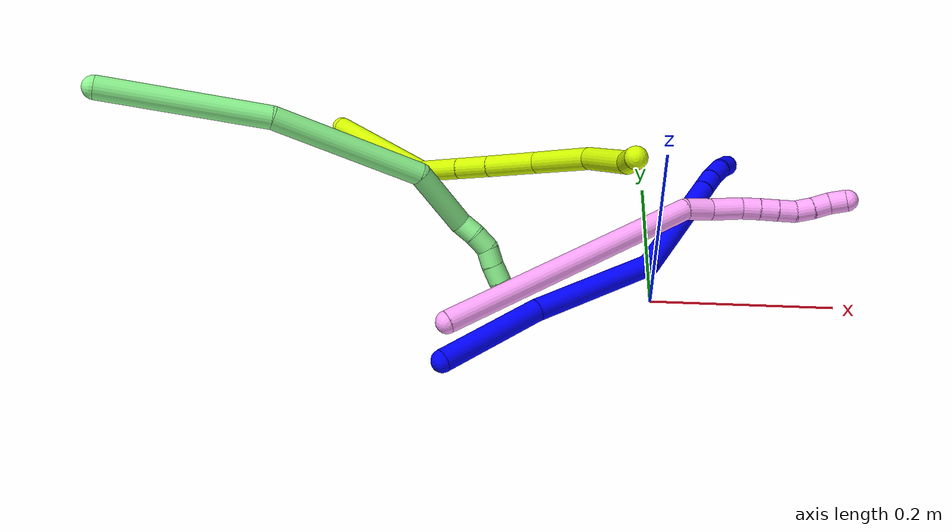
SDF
<sdf version="1.7">
 <world name="default">
  <model name="1">
   <static>0</static>
   <link name="1">
    <collision name="collision-cylinder-e_1_1_4">
     <pose>0.00017 0.049913 -0.037373 -2.21351 0.00273 -0.005455</pose>
     <geometry><cylinder><radius>0.0125</radius><length>0.124709</length></cylinder></geometry>
     <surface>
      <friction><ode><mu>1.16</mu><mu2>1.16</mu2><slip1>0</slip1><slip2>0</slip2></ode></friction>
      <contact><ode><kp>1e+06</kp><kd>1</kd><max_vel>0</max_vel><min_depth>0.001</min_depth></ode></contact>
     </surface>
    </collision>
    <visual name="visual-cylinder-e_1_1_4">
     <pose>0.00017 0.049913 -0.037373 -2.21351 0.00273 -0.005455</pose>
     <geometry><cylinder><radius>0.0125</radius><length>0.124709</length></cylinder></geometry>
     <material><ambient>0 0 1 1</ambient></material>
    </visual>
    <collision name="collision-cylinder-e_2_4_5">
     <pose>-0.004843 0.163602 -0.111821 -2.09738 -0.070147 0.121816</pose>
     <geometry><cylinder><radius>0.0125</radius><length>0.147902</length></cylinder></geometry>
     <surface>
      <friction><ode><mu>1.16</mu><mu2>1.16</mu2><slip1>0</slip1><slip2>0</slip2></ode></friction>
      <contact><ode><kp>1e+06</kp><kd>1</kd><max_vel>0</max_vel><min_depth>0.001</min_depth></ode></contact>
     </surface>
    </collision>
    <visual name="visual-cylinder-e_2_4_5">
     <pose>-0.004843 0.163602 -0.111821 -2.09738 -0.070147 0.121816</pose>
     <geometry><cylinder><radius>0.0125</radius><length>0.147902</length></cylinder></geometry>
     <material><ambient>0 0 1 1</ambient></material>
    </visual>
    <collision name="collision-cylinder-e_3_5_6">
     <pose>-0.002838 0.266967 -0.21059 -2.57107 0.09775 -0.330545</pose>
     <geometry><cylinder><radius>0.0125</radius><length>0.14731</length></cylinder></geometry>
     <surface>
      <friction><ode><mu>1.16</mu><mu2>1.16</mu2><slip1>0</slip1><slip2>0</slip2></ode></friction>
      <contact><ode><kp>1e+06</kp><kd>1</kd><max_vel>0</max_vel><min_depth>0.001</min_depth></ode></contact>
     </surface>
    </collision>
    <visual name="visual-cylinder-e_3_5_6">
     <pose>-0.002838 0.266967 -0.21059 -2.57107 0.09775 -0.330545</pose>
     <geometry><cylinder><radius>0.0125</radius><length>0.14731</length></cylinder></geometry>
     <material><ambient>0 0 1 1</ambient></material>
    </visual>
    <collision name="collision-cylinder-e_4_6_7">
     <pose>0.006806 0.313166 -0.282592 -2.57142 0.197856 -0.653076</pose>
     <geometry><cylinder><radius>0.0125</radius><length>0.024978</length></cylinder></geometry>
     <surface>
      <friction><ode><mu>1.16</mu><mu2>1.16</mu2><slip1>0</slip1><slip2>0</slip2></ode></friction>
      <contact><ode><kp>1e+06</kp><kd>1</kd><max_vel>0</max_vel><min_depth>0.001</min_depth></ode></contact>
     </surface>
    </collision>
    <visual name="visual-cylinder-e_4_6_7">
     <pose>0.006806 0.313166 -0.282592 -2.57142 0.197856 -0.653076</pose>
     <geometry><cylinder><radius>0.0125</radius><length>0.024978</length></cylinder></geometry>
     <material><ambient>0 0 1 1</ambient></material>
    </visual>
    <collision name="collision-cylinder-e_5_7_8">
     <pose>0.012743 0.328298 -0.303603 -2.46911 0.249205 -0.688203</pose>
     <geometry><cylinder><radius>0.0125</radius><length>0.028235</length></cylinder></geometry>
     <surface>
      <friction><ode><mu>1.16</mu><mu2>1.16</mu2><slip1>0</slip1><slip2>0</slip2></ode></friction>
      <contact><ode><kp>1e+06</kp><kd>1</kd><max_vel>0</max_vel><min_depth>0.001</min_depth></ode></contact>
     </surface>
    </collision>
    <visual name="visual-cylinder-e_5_7_8">
     <pose>0.012743 0.328298 -0.303603 -2.46911 0.249205 -0.688203</pose>
     <geometry><cylinder><radius>0.0125</radius><length>0.028235</length></cylinder></geometry>
     <material><ambient>0 0 1 1</ambient></material>
    </visual>
    <collision name="collision-cylinder-e_6_8_2">
     <pose>0.022868 0.345298 -0.322333 -2.32893 0.517346 -1.10268</pose>
     <geometry><cylinder><radius>0.0125</radius><length>0.026865</length></cylinder></geometry>
     <surface>
      <friction><ode><mu>1.16</mu><mu2>1.16</mu2><slip1>0</slip1><slip2>0</slip2></ode></friction>
      <contact><ode><kp>1e+06</kp><kd>1</kd><max_vel>0</max_vel><min_depth>0.001</min_depth></ode></contact>
     </surface>
    </collision>
    <visual name="visual-cylinder-e_6_8_2">
     <pose>0.022868 0.345298 -0.322333 -2.32893 0.517346 -1.10268</pose>
     <geometry><cylinder><radius>0.0125</radius><length>0.026865</length></cylinder></geometry>
     <material><ambient>0 0 1 1</ambient></material>
    </visual>
    <collision name="collision-sphere-2">
     <pose>0.029511 0.353775 -0.33036 0 -0 0</pose>
     <geometry><sphere><radius>0.0125</radius></sphere></geometry>
     <surface>
      <friction><ode><mu>1.16</mu><mu2>1.16</mu2><slip1>0</slip1><slip2>0</slip2></ode></friction>
      <contact><ode><kp>1e+06</kp><kd>1</kd><max_vel>0</max_vel><min_depth>0.001</min_depth></ode></contact>
     </surface>
    </collision>
    <visual name="visual-sphere-2">
     <pose>0.029511 0.353775 -0.33036 0 -0 0</pose>
     <geometry><sphere><radius>0.0125</radius></sphere></geometry>
     <material><ambient>0 0 1 1</ambient></material>
    </visual>
    <collision name="collision-sphere-4">
     <pose>0.00034 0.099826 -0.074746 0 -0 0</pose>
     <geometry><sphere><radius>0.0125</radius></sphere></geometry>
     <surface>
      <friction><ode><mu>1.16</mu><mu2>1.16</mu2><slip1>0</slip1><slip2>0</slip2></ode></friction>
      <contact><ode><kp>1e+06</kp><kd>1</kd><max_vel>0</max_vel><min_depth>0.001</min_depth></ode></contact>
     </surface>
    </collision>
    <visual name="visual-sphere-4">
     <pose>0.00034 0.099826 -0.074746 0 -0 0</pose>
     <geometry><sphere><radius>0.0125</radius></sphere></geometry>
     <material><ambient>0 0 1 1</ambient></material>
    </visual>
    <collision name="collision-sphere-1">
     <geometry><sphere><radius>0.0125</radius></sphere></geometry>
     <surface>
      <friction><ode><mu>1.16</mu><mu2>1.16</mu2><slip1>0</slip1><slip2>0</slip2></ode></friction>
      <contact><ode><kp>1e+06</kp><kd>1</kd><max_vel>0</max_vel><min_depth>0.001</min_depth></ode></contact>
     </surface>
    </collision>
    <visual name="visual-sphere-1">
     <geometry><sphere><radius>0.0125</radius></sphere></geometry>
     <material><ambient>0 0 1 1</ambient></material>
    </visual>
    <collision name="collision-sphere-8">
     <pose>0.016224 0.336821 -0.314306 0 -0 0</pose>
     <geometry><sphere><radius>0.0125</radius></sphere></geometry>
     <surface>
      <friction><ode><mu>1.16</mu><mu2>1.16</mu2><slip1>0</slip1><slip2>0</slip2></ode></friction>
      <contact><ode><kp>1e+06</kp><kd>1</kd><max_vel>0</max_vel><min_depth>0.001</min_depth></ode></contact>
     </surface>
    </collision>
    <visual name="visual-sphere-8">
     <pose>0.016224 0.336821 -0.314306 0 -0 0</pose>
     <geometry><sphere><radius>0.0125</radius></sphere></geometry>
     <material><ambient>0 0 1 1</ambient></material>
    </visual>
    <collision name="collision-sphere-5">
     <pose>-0.010026 0.227378 -0.148896 0 -0 0</pose>
     <geometry><sphere><radius>0.0125</radius></sphere></geometry>
     <surface>
      <friction><ode><mu>1.16</mu><mu2>1.16</mu2><slip1>0</slip1><slip2>0</slip2></ode></friction>
      <contact><ode><kp>1e+06</kp><kd>1</kd><max_vel>0</max_vel><min_depth>0.001</min_depth></ode></contact>
     </surface>
    </collision>
    <visual name="visual-sphere-5">
     <pose>-0.010026 0.227378 -0.148896 0 -0 0</pose>
     <geometry><sphere><radius>0.0125</radius></sphere></geometry>
     <material><ambient>0 0 1 1</ambient></material>
    </visual>
    <collision name="collision-sphere-6">
     <pose>0.004351 0.306556 -0.272283 0 -0 0</pose>
     <geometry><sphere><radius>0.0125</radius></sphere></geometry>
     <surface>
      <friction><ode><mu>1.16</mu><mu2>1.16</mu2><slip1>0</slip1><slip2>0</slip2></ode></friction>
      <contact><ode><kp>1e+06</kp><kd>1</kd><max_vel>0</max_vel><min_depth>0.001</min_depth></ode></contact>
     </surface>
    </collision>
    <visual name="visual-sphere-6">
     <pose>0.004351 0.306556 -0.272283 0 -0 0</pose>
     <geometry><sphere><radius>0.0125</radius></sphere></geometry>
     <material><ambient>0 0 1 1</ambient></material>
    </visual>
    <collision name="collision-sphere-7">
     <pose>0.009261 0.319776 -0.2929 0 -0 0</pose>
     <geometry><sphere><radius>0.0125</radius></sphere></geometry>
     <surface>
      <friction><ode><mu>1.16</mu><mu2>1.16</mu2><slip1>0</slip1><slip2>0</slip2></ode></friction>
      <contact><ode><kp>1e+06</kp><kd>1</kd><max_vel>0</max_vel><min_depth>0.001</min_depth></ode></contact>
     </surface>
    </collision>
    <visual name="visual-sphere-7">
     <pose>0.009261 0.319776 -0.2929 0 -0 0</pose>
     <geometry><sphere><radius>0.0125</radius></sphere></geometry>
     <material><ambient>0 0 1 1</ambient></material>
    </visual>
    <inertial>
     <pose>6.2e-05 0.192234 -0.153024 0 -0 0</pose>
     <mass>0.5</mass>
     <inertia>
      <ixx>0.000642</ixx>
      <ixy>0</ixy>
      <ixz>0</ixz>
      <iyy>-0.000483</iyy>
      <iyz>0</iyz>
      <izz>-0.000558</izz>
     </inertia>
    </inertial>
   </link>
   <pose>-0.219983 -0.113507 0.011872 -2.49761 1.05943 2.27583</pose>
  </model>
  <model name="4">
   <static>0</static>
   <link name="4">
    <collision name="collision-cylinder-e_1_1_4">
     <pose>0.111063 0.107108 0.001743 -1.55452 0.80346 -0.791812</pose>
     <geometry><cylinder><radius>0.0125</radius><length>0.308612</length></cylinder></geometry>
     <surface>
      <friction><ode><mu>1.16</mu><mu2>1.16</mu2><slip1>0</slip1><slip2>0</slip2></ode></friction>
      <contact><ode><kp>1e+06</kp><kd>1</kd><max_vel>0</max_vel><min_depth>0.001</min_depth></ode></contact>
     </surface>
    </collision>
    <visual name="visual-cylinder-e_1_1_4">
     <pose>0.111063 0.107108 0.001743 -1.55452 0.80346 -0.791812</pose>
     <geometry><cylinder><radius>0.0125</radius><length>0.308612</length></cylinder></geometry>
     <material><ambient>1 0.65098 0.996078 1</ambient></material>
    </visual>
    <collision name="collision-cylinder-e_2_4_5">
     <pose>0.229012 0.228474 0.000715 -1.76276 0.442657 -0.532932</pose>
     <geometry><cylinder><radius>0.0125</radius><length>0.032149</length></cylinder></geometry>
     <surface>
      <friction><ode><mu>1.16</mu><mu2>1.16</mu2><slip1>0</slip1><slip2>0</slip2></ode></friction>
      <contact><ode><kp>1e+06</kp><kd>1</kd><max_vel>0</max_vel><min_depth>0.001</min_depth></ode></contact>
     </surface>
    </collision>
    <visual name="visual-cylinder-e_2_4_5">
     <pose>0.229012 0.228474 0.000715 -1.76276 0.442657 -0.532932</pose>
     <geometry><cylinder><radius>0.0125</radius><length>0.032149</length></cylinder></geometry>
     <material><ambient>1 0.65098 0.996078 1</ambient></material>
    </visual>
    <collision name="collision-cylinder-e_3_5_6">
     <pose>0.245263 0.257014 -0.008482 -1.9936 0.538967 -0.807374</pose>
     <geometry><cylinder><radius>0.0125</radius><length>0.036495</length></cylinder></geometry>
     <surface>
      <friction><ode><mu>1.16</mu><mu2>1.16</mu2><slip1>0</slip1><slip2>0</slip2></ode></friction>
      <contact><ode><kp>1e+06</kp><kd>1</kd><max_vel>0</max_vel><min_depth>0.001</min_depth></ode></contact>
     </surface>
    </collision>
    <visual name="visual-cylinder-e_3_5_6">
     <pose>0.245263 0.257014 -0.008482 -1.9936 0.538967 -0.807374</pose>
     <geometry><cylinder><radius>0.0125</radius><length>0.036495</length></cylinder></geometry>
     <material><ambient>1 0.65098 0.996078 1</ambient></material>
    </visual>
    <collision name="collision-cylinder-e_4_6_7">
     <pose>0.259418 0.279076 -0.020057 -2.15552 0.474313 -0.845471</pose>
     <geometry><cylinder><radius>0.0125</radius><length>0.020975</length></cylinder></geometry>
     <surface>
      <friction><ode><mu>1.16</mu><mu2>1.16</mu2><slip1>0</slip1><slip2>0</slip2></ode></friction>
      <contact><ode><kp>1e+06</kp><kd>1</kd><max_vel>0</max_vel><min_depth>0.001</min_depth></ode></contact>
     </surface>
    </collision>
    <visual name="visual-cylinder-e_4_6_7">
     <pose>0.259418 0.279076 -0.020057 -2.15552 0.474313 -0.845471</pose>
     <geometry><cylinder><radius>0.0125</radius><length>0.020975</length></cylinder></geometry>
     <material><ambient>1 0.65098 0.996078 1</ambient></material>
    </visual>
    <collision name="collision-cylinder-e_5_7_8">
     <pose>0.268631 0.294708 -0.030215 -2.13856 0.443314 -0.779964</pose>
     <geometry><cylinder><radius>0.0125</radius><length>0.020621</length></cylinder></geometry>
     <surface>
      <friction><ode><mu>1.16</mu><mu2>1.16</mu2><slip1>0</slip1><slip2>0</slip2></ode></friction>
      <contact><ode><kp>1e+06</kp><kd>1</kd><max_vel>0</max_vel><min_depth>0.001</min_depth></ode></contact>
     </surface>
    </collision>
    <visual name="visual-cylinder-e_5_7_8">
     <pose>0.268631 0.294708 -0.030215 -2.13856 0.443314 -0.779964</pose>
     <geometry><cylinder><radius>0.0125</radius><length>0.020621</length></cylinder></geometry>
     <material><ambient>1 0.65098 0.996078 1</ambient></material>
    </visual>
    <collision name="collision-cylinder-e_6_8_9">
     <pose>0.277583 0.310716 -0.039906 -2.09192 0.448883 -0.751129</pose>
     <geometry><cylinder><radius>0.0125</radius><length>0.020876</length></cylinder></geometry>
     <surface>
      <friction><ode><mu>1.16</mu><mu2>1.16</mu2><slip1>0</slip1><slip2>0</slip2></ode></friction>
      <contact><ode><kp>1e+06</kp><kd>1</kd><max_vel>0</max_vel><min_depth>0.001</min_depth></ode></contact>
     </surface>
    </collision>
    <visual name="visual-cylinder-e_6_8_9">
     <pose>0.277583 0.310716 -0.039906 -2.09192 0.448883 -0.751129</pose>
     <geometry><cylinder><radius>0.0125</radius><length>0.020876</length></cylinder></geometry>
     <material><ambient>1 0.65098 0.996078 1</ambient></material>
    </visual>
    <collision name="collision-cylinder-e_7_9_10">
     <pose>0.288612 0.325356 -0.048646 -2.13004 0.704246 -1.17155</pose>
     <geometry><cylinder><radius>0.0125</radius><length>0.020075</length></cylinder></geometry>
     <surface>
      <friction><ode><mu>1.16</mu><mu2>1.16</mu2><slip1>0</slip1><slip2>0</slip2></ode></friction>
      <contact><ode><kp>1e+06</kp><kd>1</kd><max_vel>0</max_vel><min_depth>0.001</min_depth></ode></contact>
     </surface>
    </collision>
    <visual name="visual-cylinder-e_7_9_10">
     <pose>0.288612 0.325356 -0.048646 -2.13004 0.704246 -1.17155</pose>
     <geometry><cylinder><radius>0.0125</radius><length>0.020075</length></cylinder></geometry>
     <material><ambient>1 0.65098 0.996078 1</ambient></material>
    </visual>
    <collision name="collision-cylinder-e_8_10_11">
     <pose>0.302332 0.337942 -0.056184 -2.08906 0.799245 -1.25729</pose>
     <geometry><cylinder><radius>0.0125</radius><length>0.020148</length></cylinder></geometry>
     <surface>
      <friction><ode><mu>1.16</mu><mu2>1.16</mu2><slip1>0</slip1><slip2>0</slip2></ode></friction>
      <contact><ode><kp>1e+06</kp><kd>1</kd><max_vel>0</max_vel><min_depth>0.001</min_depth></ode></contact>
     </surface>
    </collision>
    <visual name="visual-cylinder-e_8_10_11">
     <pose>0.302332 0.337942 -0.056184 -2.08906 0.799245 -1.25729</pose>
     <geometry><cylinder><radius>0.0125</radius><length>0.020148</length></cylinder></geometry>
     <material><ambient>1 0.65098 0.996078 1</ambient></material>
    </visual>
    <collision name="collision-cylinder-e_9_11_2">
     <pose>0.315934 0.348553 -0.065945 -2.51902 0.68988 -1.68098</pose>
     <geometry><cylinder><radius>0.0125</radius><length>0.020049</length></cylinder></geometry>
     <surface>
      <friction><ode><mu>1.16</mu><mu2>1.16</mu2><slip1>0</slip1><slip2>0</slip2></ode></friction>
      <contact><ode><kp>1e+06</kp><kd>1</kd><max_vel>0</max_vel><min_depth>0.001</min_depth></ode></contact>
     </surface>
    </collision>
    <visual name="visual-cylinder-e_9_11_2">
     <pose>0.315934 0.348553 -0.065945 -2.51902 0.68988 -1.68098</pose>
     <geometry><cylinder><radius>0.0125</radius><length>0.020049</length></cylinder></geometry>
     <material><ambient>1 0.65098 0.996078 1</ambient></material>
    </visual>
    <collision name="collision-sphere-2">
     <pose>0.322314 0.353062 -0.072227 0 -0 0</pose>
     <geometry><sphere><radius>0.0125</radius></sphere></geometry>
     <surface>
      <friction><ode><mu>1.16</mu><mu2>1.16</mu2><slip1>0</slip1><slip2>0</slip2></ode></friction>
      <contact><ode><kp>1e+06</kp><kd>1</kd><max_vel>0</max_vel><min_depth>0.001</min_depth></ode></contact>
     </surface>
    </collision>
    <visual name="visual-sphere-2">
     <pose>0.322314 0.353062 -0.072227 0 -0 0</pose>
     <geometry><sphere><radius>0.0125</radius></sphere></geometry>
     <material><ambient>1 0.65098 0.996078 1</ambient></material>
    </visual>
    <collision name="collision-sphere-11">
     <pose>0.309554 0.344044 -0.059664 0 -0 0</pose>
     <geometry><sphere><radius>0.0125</radius></sphere></geometry>
     <surface>
      <friction><ode><mu>1.16</mu><mu2>1.16</mu2><slip1>0</slip1><slip2>0</slip2></ode></friction>
      <contact><ode><kp>1e+06</kp><kd>1</kd><max_vel>0</max_vel><min_depth>0.001</min_depth></ode></contact>
     </surface>
    </collision>
    <visual name="visual-sphere-11">
     <pose>0.309554 0.344044 -0.059664 0 -0 0</pose>
     <geometry><sphere><radius>0.0125</radius></sphere></geometry>
     <material><ambient>1 0.65098 0.996078 1</ambient></material>
    </visual>
    <collision name="collision-sphere-10">
     <pose>0.295111 0.331841 -0.052705 0 -0 0</pose>
     <geometry><sphere><radius>0.0125</radius></sphere></geometry>
     <surface>
      <friction><ode><mu>1.16</mu><mu2>1.16</mu2><slip1>0</slip1><slip2>0</slip2></ode></friction>
      <contact><ode><kp>1e+06</kp><kd>1</kd><max_vel>0</max_vel><min_depth>0.001</min_depth></ode></contact>
     </surface>
    </collision>
    <visual name="visual-sphere-10">
     <pose>0.295111 0.331841 -0.052705 0 -0 0</pose>
     <geometry><sphere><radius>0.0125</radius></sphere></geometry>
     <material><ambient>1 0.65098 0.996078 1</ambient></material>
    </visual>
    <collision name="collision-sphere-9">
     <pose>0.282113 0.318872 -0.044588 0 -0 0</pose>
     <geometry><sphere><radius>0.0125</radius></sphere></geometry>
     <surface>
      <friction><ode><mu>1.16</mu><mu2>1.16</mu2><slip1>0</slip1><slip2>0</slip2></ode></friction>
      <contact><ode><kp>1e+06</kp><kd>1</kd><max_vel>0</max_vel><min_depth>0.001</min_depth></ode></contact>
     </surface>
    </collision>
    <visual name="visual-sphere-9">
     <pose>0.282113 0.318872 -0.044588 0 -0 0</pose>
     <geometry><sphere><radius>0.0125</radius></sphere></geometry>
     <material><ambient>1 0.65098 0.996078 1</ambient></material>
    </visual>
    <collision name="collision-sphere-4">
     <pose>0.222127 0.214216 0.003486 0 -0 0</pose>
     <geometry><sphere><radius>0.0125</radius></sphere></geometry>
     <surface>
      <friction><ode><mu>1.16</mu><mu2>1.16</mu2><slip1>0</slip1><slip2>0</slip2></ode></friction>
      <contact><ode><kp>1e+06</kp><kd>1</kd><max_vel>0</max_vel><min_depth>0.001</min_depth></ode></contact>
     </surface>
    </collision>
    <visual name="visual-sphere-4">
     <pose>0.222127 0.214216 0.003486 0 -0 0</pose>
     <geometry><sphere><radius>0.0125</radius></sphere></geometry>
     <material><ambient>1 0.65098 0.996078 1</ambient></material>
    </visual>
    <collision name="collision-sphere-1">
     <geometry><sphere><radius>0.0125</radius></sphere></geometry>
     <surface>
      <friction><ode><mu>1.16</mu><mu2>1.16</mu2><slip1>0</slip1><slip2>0</slip2></ode></friction>
      <contact><ode><kp>1e+06</kp><kd>1</kd><max_vel>0</max_vel><min_depth>0.001</min_depth></ode></contact>
     </surface>
    </collision>
    <visual name="visual-sphere-1">
     <geometry><sphere><radius>0.0125</radius></sphere></geometry>
     <material><ambient>1 0.65098 0.996078 1</ambient></material>
    </visual>
    <collision name="collision-sphere-8">
     <pose>0.273053 0.30256 -0.035224 0 -0 0</pose>
     <geometry><sphere><radius>0.0125</radius></sphere></geometry>
     <surface>
      <friction><ode><mu>1.16</mu><mu2>1.16</mu2><slip1>0</slip1><slip2>0</slip2></ode></friction>
      <contact><ode><kp>1e+06</kp><kd>1</kd><max_vel>0</max_vel><min_depth>0.001</min_depth></ode></contact>
     </surface>
    </collision>
    <visual name="visual-sphere-8">
     <pose>0.273053 0.30256 -0.035224 0 -0 0</pose>
     <geometry><sphere><radius>0.0125</radius></sphere></geometry>
     <material><ambient>1 0.65098 0.996078 1</ambient></material>
    </visual>
    <collision name="collision-sphere-5">
     <pose>0.235898 0.242733 -0.002056 0 -0 0</pose>
     <geometry><sphere><radius>0.0125</radius></sphere></geometry>
     <surface>
      <friction><ode><mu>1.16</mu><mu2>1.16</mu2><slip1>0</slip1><slip2>0</slip2></ode></friction>
      <contact><ode><kp>1e+06</kp><kd>1</kd><max_vel>0</max_vel><min_depth>0.001</min_depth></ode></contact>
     </surface>
    </collision>
    <visual name="visual-sphere-5">
     <pose>0.235898 0.242733 -0.002056 0 -0 0</pose>
     <geometry><sphere><radius>0.0125</radius></sphere></geometry>
     <material><ambient>1 0.65098 0.996078 1</ambient></material>
    </visual>
    <collision name="collision-sphere-6">
     <pose>0.254629 0.271296 -0.014908 0 -0 0</pose>
     <geometry><sphere><radius>0.0125</radius></sphere></geometry>
     <surface>
      <friction><ode><mu>1.16</mu><mu2>1.16</mu2><slip1>0</slip1><slip2>0</slip2></ode></friction>
      <contact><ode><kp>1e+06</kp><kd>1</kd><max_vel>0</max_vel><min_depth>0.001</min_depth></ode></contact>
     </surface>
    </collision>
    <visual name="visual-sphere-6">
     <pose>0.254629 0.271296 -0.014908 0 -0 0</pose>
     <geometry><sphere><radius>0.0125</radius></sphere></geometry>
     <material><ambient>1 0.65098 0.996078 1</ambient></material>
    </visual>
    <collision name="collision-sphere-7">
     <pose>0.264208 0.286855 -0.025207 0 -0 0</pose>
     <geometry><sphere><radius>0.0125</radius></sphere></geometry>
     <surface>
      <friction><ode><mu>1.16</mu><mu2>1.16</mu2><slip1>0</slip1><slip2>0</slip2></ode></friction>
      <contact><ode><kp>1e+06</kp><kd>1</kd><max_vel>0</max_vel><min_depth>0.001</min_depth></ode></contact>
     </surface>
    </collision>
    <visual name="visual-sphere-7">
     <pose>0.264208 0.286855 -0.025207 0 -0 0</pose>
     <geometry><sphere><radius>0.0125</radius></sphere></geometry>
     <material><ambient>1 0.65098 0.996078 1</ambient></material>
    </visual>
    <inertial>
     <pose>0.171168 0.177052 -0.010112 0 -0 0</pose>
     <mass>0.5</mass>
     <inertia><ixx>8e-06</ixx><ixy>0</ixy><ixz>0</ixz><iyy>9.1e-05</iyy><iyz>0</iyz><izz>-0.003509</izz></inertia>
    </inertial>
   </link>
   <pose>-0.216909 -0.085592 0.040597 -1.90674 -0.817663 0.813494</pose>
  </model>
  <model name="13">
   <static>0</static>
   <link name="13">
    <collision name="collision-cylinder-e_1_1_4">
     <pose>-0.010691 0.003335 0.086522 -0.038524 -0.122851 0.00237</pose>
     <geometry><cylinder><radius>0.0125</radius><length>0.174488</length></cylinder></geometry>
     <surface>
      <friction><ode><mu>1.16</mu><mu2>1.16</mu2><slip1>0</slip1><slip2>0</slip2></ode></friction>
      <contact><ode><kp>1e+06</kp><kd>1</kd><max_vel>0</max_vel><min_depth>0.001</min_depth></ode></contact>
     </surface>
    </collision>
    <visual name="visual-cylinder-e_1_1_4">
     <pose>-0.010691 0.003335 0.086522 -0.038524 -0.122851 0.00237</pose>
     <geometry><cylinder><radius>0.0125</radius><length>0.174488</length></cylinder></geometry>
     <material><ambient>0.564706 0.984314 0.572549 1</ambient></material>
    </visual>
    <collision name="collision-cylinder-e_2_4_5">
     <pose>-0.046913 -0.002111 0.251622 0.111287 -0.312335 -0.01754</pose>
     <geometry><cylinder><radius>0.0125</radius><length>0.166173</length></cylinder></geometry>
     <surface>
      <friction><ode><mu>1.16</mu><mu2>1.16</mu2><slip1>0</slip1><slip2>0</slip2></ode></friction>
      <contact><ode><kp>1e+06</kp><kd>1</kd><max_vel>0</max_vel><min_depth>0.001</min_depth></ode></contact>
     </surface>
    </collision>
    <visual name="visual-cylinder-e_2_4_5">
     <pose>-0.046913 -0.002111 0.251622 0.111287 -0.312335 -0.01754</pose>
     <geometry><cylinder><radius>0.0125</radius><length>0.166173</length></cylinder></geometry>
     <material><ambient>0.564706 0.984314 0.572549 1</ambient></material>
    </visual>
    <collision name="collision-cylinder-e_3_5_6">
     <pose>-0.097921 -0.024713 0.355923 0.493042 -0.717396 -0.188131</pose>
     <geometry><cylinder><radius>0.0125</radius><length>0.077507</length></cylinder></geometry>
     <surface>
      <friction><ode><mu>1.16</mu><mu2>1.16</mu2><slip1>0</slip1><slip2>0</slip2></ode></friction>
      <contact><ode><kp>1e+06</kp><kd>1</kd><max_vel>0</max_vel><min_depth>0.001</min_depth></ode></contact>
     </surface>
    </collision>
    <visual name="visual-cylinder-e_3_5_6">
     <pose>-0.097921 -0.024713 0.355923 0.493042 -0.717396 -0.188131</pose>
     <geometry><cylinder><radius>0.0125</radius><length>0.077507</length></cylinder></geometry>
     <material><ambient>0.564706 0.984314 0.572549 1</ambient></material>
    </visual>
    <collision name="collision-cylinder-e_4_6_7">
     <pose>-0.129579 -0.037073 0.389544 -0.182944 -0.655822 0.06239</pose>
     <geometry><cylinder><radius>0.0125</radius><length>0.020269</length></cylinder></geometry>
     <surface>
      <friction><ode><mu>1.16</mu><mu2>1.16</mu2><slip1>0</slip1><slip2>0</slip2></ode></friction>
      <contact><ode><kp>1e+06</kp><kd>1</kd><max_vel>0</max_vel><min_depth>0.001</min_depth></ode></contact>
     </surface>
    </collision>
    <visual name="visual-cylinder-e_4_6_7">
     <pose>-0.129579 -0.037073 0.389544 -0.182944 -0.655822 0.06239</pose>
     <geometry><cylinder><radius>0.0125</radius><length>0.020269</length></cylinder></geometry>
     <material><ambient>0.564706 0.984314 0.572549 1</ambient></material>
    </visual>
    <collision name="collision-cylinder-e_5_7_8">
     <pose>-0.143201 -0.036064 0.405102 0.058906 -0.77009 -0.023879</pose>
     <geometry><cylinder><radius>0.0125</radius><length>0.021378</length></cylinder></geometry>
     <surface>
      <friction><ode><mu>1.16</mu><mu2>1.16</mu2><slip1>0</slip1><slip2>0</slip2></ode></friction>
      <contact><ode><kp>1e+06</kp><kd>1</kd><max_vel>0</max_vel><min_depth>0.001</min_depth></ode></contact>
     </surface>
    </collision>
    <visual name="visual-cylinder-e_5_7_8">
     <pose>-0.143201 -0.036064 0.405102 0.058906 -0.77009 -0.023879</pose>
     <geometry><cylinder><radius>0.0125</radius><length>0.021378</length></cylinder></geometry>
     <material><ambient>0.564706 0.984314 0.572549 1</ambient></material>
    </visual>
    <collision name="collision-cylinder-e_6_8_9">
     <pose>-0.160044 -0.036996 0.416201 0.138757 -1.21698 -0.096748</pose>
     <geometry><cylinder><radius>0.0125</radius><length>0.020044</length></cylinder></geometry>
     <surface>
      <friction><ode><mu>1.16</mu><mu2>1.16</mu2><slip1>0</slip1><slip2>0</slip2></ode></friction>
      <contact><ode><kp>1e+06</kp><kd>1</kd><max_vel>0</max_vel><min_depth>0.001</min_depth></ode></contact>
     </surface>
    </collision>
    <visual name="visual-cylinder-e_6_8_9">
     <pose>-0.160044 -0.036996 0.416201 0.138757 -1.21698 -0.096748</pose>
     <geometry><cylinder><radius>0.0125</radius><length>0.020044</length></cylinder></geometry>
     <material><ambient>0.564706 0.984314 0.572549 1</ambient></material>
    </visual>
    <collision name="collision-cylinder-e_7_9_2">
     <pose>-0.178418 -0.037623 0.42421 0.032194 -1.09948 -0.019728</pose>
     <geometry><cylinder><radius>0.0125</radius><length>0.020142</length></cylinder></geometry>
     <surface>
      <friction><ode><mu>1.16</mu><mu2>1.16</mu2><slip1>0</slip1><slip2>0</slip2></ode></friction>
      <contact><ode><kp>1e+06</kp><kd>1</kd><max_vel>0</max_vel><min_depth>0.001</min_depth></ode></contact>
     </surface>
    </collision>
    <visual name="visual-cylinder-e_7_9_2">
     <pose>-0.178418 -0.037623 0.42421 0.032194 -1.09948 -0.019728</pose>
     <geometry><cylinder><radius>0.0125</radius><length>0.020142</length></cylinder></geometry>
     <material><ambient>0.564706 0.984314 0.572549 1</ambient></material>
    </visual>
    <collision name="collision-sphere-2">
     <pose>-0.18739 -0.037771 0.428781 0 -0 0</pose>
     <geometry><sphere><radius>0.0125</radius></sphere></geometry>
     <surface>
      <friction><ode><mu>1.16</mu><mu2>1.16</mu2><slip1>0</slip1><slip2>0</slip2></ode></friction>
      <contact><ode><kp>1e+06</kp><kd>1</kd><max_vel>0</max_vel><min_depth>0.001</min_depth></ode></contact>
     </surface>
    </collision>
    <visual name="visual-sphere-2">
     <pose>-0.18739 -0.037771 0.428781 0 -0 0</pose>
     <geometry><sphere><radius>0.0125</radius></sphere></geometry>
     <material><ambient>0.564706 0.984314 0.572549 1</ambient></material>
    </visual>
    <collision name="collision-sphere-9">
     <pose>-0.169445 -0.037476 0.41964 0 -0 0</pose>
     <geometry><sphere><radius>0.0125</radius></sphere></geometry>
     <surface>
      <friction><ode><mu>1.16</mu><mu2>1.16</mu2><slip1>0</slip1><slip2>0</slip2></ode></friction>
      <contact><ode><kp>1e+06</kp><kd>1</kd><max_vel>0</max_vel><min_depth>0.001</min_depth></ode></contact>
     </surface>
    </collision>
    <visual name="visual-sphere-9">
     <pose>-0.169445 -0.037476 0.41964 0 -0 0</pose>
     <geometry><sphere><radius>0.0125</radius></sphere></geometry>
     <material><ambient>0.564706 0.984314 0.572549 1</ambient></material>
    </visual>
    <collision name="collision-sphere-4">
     <pose>-0.021382 0.00667 0.173044 0 -0 0</pose>
     <geometry><sphere><radius>0.0125</radius></sphere></geometry>
     <surface>
      <friction><ode><mu>1.16</mu><mu2>1.16</mu2><slip1>0</slip1><slip2>0</slip2></ode></friction>
      <contact><ode><kp>1e+06</kp><kd>1</kd><max_vel>0</max_vel><min_depth>0.001</min_depth></ode></contact>
     </surface>
    </collision>
    <visual name="visual-sphere-4">
     <pose>-0.021382 0.00667 0.173044 0 -0 0</pose>
     <geometry><sphere><radius>0.0125</radius></sphere></geometry>
     <material><ambient>0.564706 0.984314 0.572549 1</ambient></material>
    </visual>
    <collision name="collision-sphere-1">
     <geometry><sphere><radius>0.0125</radius></sphere></geometry>
     <surface>
      <friction><ode><mu>1.16</mu><mu2>1.16</mu2><slip1>0</slip1><slip2>0</slip2></ode></friction>
      <contact><ode><kp>1e+06</kp><kd>1</kd><max_vel>0</max_vel><min_depth>0.001</min_depth></ode></contact>
     </surface>
    </collision>
    <visual name="visual-sphere-1">
     <geometry><sphere><radius>0.0125</radius></sphere></geometry>
     <material><ambient>0.564706 0.984314 0.572549 1</ambient></material>
    </visual>
    <collision name="collision-sphere-8">
     <pose>-0.150643 -0.036516 0.412762 0 -0 0</pose>
     <geometry><sphere><radius>0.0125</radius></sphere></geometry>
     <surface>
      <friction><ode><mu>1.16</mu><mu2>1.16</mu2><slip1>0</slip1><slip2>0</slip2></ode></friction>
      <contact><ode><kp>1e+06</kp><kd>1</kd><max_vel>0</max_vel><min_depth>0.001</min_depth></ode></contact>
     </surface>
    </collision>
    <visual name="visual-sphere-8">
     <pose>-0.150643 -0.036516 0.412762 0 -0 0</pose>
     <geometry><sphere><radius>0.0125</radius></sphere></geometry>
     <material><ambient>0.564706 0.984314 0.572549 1</ambient></material>
    </visual>
    <collision name="collision-sphere-5">
     <pose>-0.072444 -0.010892 0.330199 0 -0 0</pose>
     <geometry><sphere><radius>0.0125</radius></sphere></geometry>
     <surface>
      <friction><ode><mu>1.16</mu><mu2>1.16</mu2><slip1>0</slip1><slip2>0</slip2></ode></friction>
      <contact><ode><kp>1e+06</kp><kd>1</kd><max_vel>0</max_vel><min_depth>0.001</min_depth></ode></contact>
     </surface>
    </collision>
    <visual name="visual-sphere-5">
     <pose>-0.072444 -0.010892 0.330199 0 -0 0</pose>
     <geometry><sphere><radius>0.0125</radius></sphere></geometry>
     <material><ambient>0.564706 0.984314 0.572549 1</ambient></material>
    </visual>
    <collision name="collision-sphere-6">
     <pose>-0.123399 -0.038535 0.381646 0 -0 0</pose>
     <geometry><sphere><radius>0.0125</radius></sphere></geometry>
     <surface>
      <friction><ode><mu>1.16</mu><mu2>1.16</mu2><slip1>0</slip1><slip2>0</slip2></ode></friction>
      <contact><ode><kp>1e+06</kp><kd>1</kd><max_vel>0</max_vel><min_depth>0.001</min_depth></ode></contact>
     </surface>
    </collision>
    <visual name="visual-sphere-6">
     <pose>-0.123399 -0.038535 0.381646 0 -0 0</pose>
     <geometry><sphere><radius>0.0125</radius></sphere></geometry>
     <material><ambient>0.564706 0.984314 0.572549 1</ambient></material>
    </visual>
    <collision name="collision-sphere-7">
     <pose>-0.135759 -0.035612 0.397442 0 -0 0</pose>
     <geometry><sphere><radius>0.0125</radius></sphere></geometry>
     <surface>
      <friction><ode><mu>1.16</mu><mu2>1.16</mu2><slip1>0</slip1><slip2>0</slip2></ode></friction>
      <contact><ode><kp>1e+06</kp><kd>1</kd><max_vel>0</max_vel><min_depth>0.001</min_depth></ode></contact>
     </surface>
    </collision>
    <visual name="visual-sphere-7">
     <pose>-0.135759 -0.035612 0.397442 0 -0 0</pose>
     <geometry><sphere><radius>0.0125</radius></sphere></geometry>
     <material><ambient>0.564706 0.984314 0.572549 1</ambient></material>
    </visual>
    <inertial>
     <pose>-0.05948 -0.009412 0.235877 0 -0 0</pose>
     <mass>0.5</mass>
     <inertia>
      <ixx>0.000825</ixx>
      <ixy>0</ixy>
      <ixz>0</ixz>
      <iyy>0.000866</iyy>
      <iyz>0</iyz>
      <izz>0.000279</izz>
     </inertia>
    </inertial>
   </link>
   <pose>-0.568407 0.005089 0.256299 1.85509 -0.895996 1.57191</pose>
  </model>
  <model name="15">
   <static>0</static>
   <link name="15">
    <collision name="collision-cylinder-e_1_1_4">
     <pose>0.045987 -0.048429 0.038122 0.903921 0.641025 0.319567</pose>
     <geometry><cylinder><radius>0.0125</radius><length>0.153797</length></cylinder></geometry>
     <surface>
      <friction><ode><mu>1.16</mu><mu2>1.16</mu2><slip1>0</slip1><slip2>0</slip2></ode></friction>
      <contact><ode><kp>1e+06</kp><kd>1</kd><max_vel>0</max_vel><min_depth>0.001</min_depth></ode></contact>
     </surface>
    </collision>
    <visual name="visual-cylinder-e_1_1_4">
     <pose>0.045987 -0.048429 0.038122 0.903921 0.641025 0.319567</pose>
     <geometry><cylinder><radius>0.0125</radius><length>0.153797</length></cylinder></geometry>
     <material><ambient>0.835294 1 0 1</ambient></material>
    </visual>
    <collision name="collision-cylinder-e_2_4_5">
     <pose>0.115582 -0.104379 0.08598 0.657777 1.09038 0.408218</pose>
     <geometry><cylinder><radius>0.0125</radius><length>0.053245</length></cylinder></geometry>
     <surface>
      <friction><ode><mu>1.16</mu><mu2>1.16</mu2><slip1>0</slip1><slip2>0</slip2></ode></friction>
      <contact><ode><kp>1e+06</kp><kd>1</kd><max_vel>0</max_vel><min_depth>0.001</min_depth></ode></contact>
     </surface>
    </collision>
    <visual name="visual-cylinder-e_2_4_5">
     <pose>0.115582 -0.104379 0.08598 0.657777 1.09038 0.408218</pose>
     <geometry><cylinder><radius>0.0125</radius><length>0.053245</length></cylinder></geometry>
     <material><ambient>0.835294 1 0 1</ambient></material>
    </visual>
    <collision name="collision-cylinder-e_3_5_6">
     <pose>0.157872 -0.117868 0.103435 0.658187 1.0895 0.40809</pose>
     <geometry><cylinder><radius>0.0125</radius><length>0.04215</length></cylinder></geometry>
     <surface>
      <friction><ode><mu>1.16</mu><mu2>1.16</mu2><slip1>0</slip1><slip2>0</slip2></ode></friction>
      <contact><ode><kp>1e+06</kp><kd>1</kd><max_vel>0</max_vel><min_depth>0.001</min_depth></ode></contact>
     </surface>
    </collision>
    <visual name="visual-cylinder-e_3_5_6">
     <pose>0.157872 -0.117868 0.103435 0.658187 1.0895 0.40809</pose>
     <geometry><cylinder><radius>0.0125</radius><length>0.04215</length></cylinder></geometry>
     <material><ambient>0.835294 1 0 1</ambient></material>
    </visual>
    <collision name="collision-cylinder-e_4_6_7">
     <pose>0.204781 -0.132651 0.122965 0.641113 1.08961 0.397079</pose>
     <geometry><cylinder><radius>0.0125</radius><length>0.063688</length></cylinder></geometry>
     <surface>
      <friction><ode><mu>1.16</mu><mu2>1.16</mu2><slip1>0</slip1><slip2>0</slip2></ode></friction>
      <contact><ode><kp>1e+06</kp><kd>1</kd><max_vel>0</max_vel><min_depth>0.001</min_depth></ode></contact>
     </surface>
    </collision>
    <visual name="visual-cylinder-e_4_6_7">
     <pose>0.204781 -0.132651 0.122965 0.641113 1.08961 0.397079</pose>
     <geometry><cylinder><radius>0.0125</radius><length>0.063688</length></cylinder></geometry>
     <material><ambient>0.835294 1 0 1</ambient></material>
    </visual>
    <collision name="collision-cylinder-e_5_7_8">
     <pose>0.263358 -0.150671 0.158035 0.376852 0.881465 0.179403</pose>
     <geometry><cylinder><radius>0.0125</radius><length>0.078657</length></cylinder></geometry>
     <surface>
      <friction><ode><mu>1.16</mu><mu2>1.16</mu2><slip1>0</slip1><slip2>0</slip2></ode></friction>
      <contact><ode><kp>1e+06</kp><kd>1</kd><max_vel>0</max_vel><min_depth>0.001</min_depth></ode></contact>
     </surface>
    </collision>
    <visual name="visual-cylinder-e_5_7_8">
     <pose>0.263358 -0.150671 0.158035 0.376852 0.881465 0.179403</pose>
     <geometry><cylinder><radius>0.0125</radius><length>0.078657</length></cylinder></geometry>
     <material><ambient>0.835294 1 0 1</ambient></material>
    </visual>
    <collision name="collision-cylinder-e_6_8_9">
     <pose>0.313357 -0.169182 0.212248 0.292052 0.546234 0.082349</pose>
     <geometry><cylinder><radius>0.0125</radius><length>0.075655</length></cylinder></geometry>
     <surface>
      <friction><ode><mu>1.16</mu><mu2>1.16</mu2><slip1>0</slip1><slip2>0</slip2></ode></friction>
      <contact><ode><kp>1e+06</kp><kd>1</kd><max_vel>0</max_vel><min_depth>0.001</min_depth></ode></contact>
     </surface>
    </collision>
    <visual name="visual-cylinder-e_6_8_9">
     <pose>0.313357 -0.169182 0.212248 0.292052 0.546234 0.082349</pose>
     <geometry><cylinder><radius>0.0125</radius><length>0.075655</length></cylinder></geometry>
     <material><ambient>0.835294 1 0 1</ambient></material>
    </visual>
    <collision name="collision-cylinder-e_7_9_2">
     <pose>0.338287 -0.177489 0.258701 -0.064378 0.327698 -0.010647</pose>
     <geometry><cylinder><radius>0.0125</radius><length>0.032808</length></cylinder></geometry>
     <surface>
      <friction><ode><mu>1.16</mu><mu2>1.16</mu2><slip1>0</slip1><slip2>0</slip2></ode></friction>
      <contact><ode><kp>1e+06</kp><kd>1</kd><max_vel>0</max_vel><min_depth>0.001</min_depth></ode></contact>
     </surface>
    </collision>
    <visual name="visual-cylinder-e_7_9_2">
     <pose>0.338287 -0.177489 0.258701 -0.064378 0.327698 -0.010647</pose>
     <geometry><cylinder><radius>0.0125</radius><length>0.032808</length></cylinder></geometry>
     <material><ambient>0.835294 1 0 1</ambient></material>
    </visual>
    <collision name="collision-sphere-2">
     <pose>0.343567 -0.17649 0.2742 0 -0 0</pose>
     <geometry><sphere><radius>0.0125</radius></sphere></geometry>
     <surface>
      <friction><ode><mu>1.16</mu><mu2>1.16</mu2><slip1>0</slip1><slip2>0</slip2></ode></friction>
      <contact><ode><kp>1e+06</kp><kd>1</kd><max_vel>0</max_vel><min_depth>0.001</min_depth></ode></contact>
     </surface>
    </collision>
    <visual name="visual-sphere-2">
     <pose>0.343567 -0.17649 0.2742 0 -0 0</pose>
     <geometry><sphere><radius>0.0125</radius></sphere></geometry>
     <material><ambient>0.835294 1 0 1</ambient></material>
    </visual>
    <collision name="collision-sphere-9">
     <pose>0.333007 -0.178488 0.243203 0 -0 0</pose>
     <geometry><sphere><radius>0.0125</radius></sphere></geometry>
     <surface>
      <friction><ode><mu>1.16</mu><mu2>1.16</mu2><slip1>0</slip1><slip2>0</slip2></ode></friction>
      <contact><ode><kp>1e+06</kp><kd>1</kd><max_vel>0</max_vel><min_depth>0.001</min_depth></ode></contact>
     </surface>
    </collision>
    <visual name="visual-sphere-9">
     <pose>0.333007 -0.178488 0.243203 0 -0 0</pose>
     <geometry><sphere><radius>0.0125</radius></sphere></geometry>
     <material><ambient>0.835294 1 0 1</ambient></material>
    </visual>
    <collision name="collision-sphere-4">
     <pose>0.091973 -0.096857 0.076244 0 -0 0</pose>
     <geometry><sphere><radius>0.0125</radius></sphere></geometry>
     <surface>
      <friction><ode><mu>1.16</mu><mu2>1.16</mu2><slip1>0</slip1><slip2>0</slip2></ode></friction>
      <contact><ode><kp>1e+06</kp><kd>1</kd><max_vel>0</max_vel><min_depth>0.001</min_depth></ode></contact>
     </surface>
    </collision>
    <visual name="visual-sphere-4">
     <pose>0.091973 -0.096857 0.076244 0 -0 0</pose>
     <geometry><sphere><radius>0.0125</radius></sphere></geometry>
     <material><ambient>0.835294 1 0 1</ambient></material>
    </visual>
    <collision name="collision-sphere-1">
     <geometry><sphere><radius>0.0125</radius></sphere></geometry>
     <surface>
      <friction><ode><mu>1.16</mu><mu2>1.16</mu2><slip1>0</slip1><slip2>0</slip2></ode></friction>
      <contact><ode><kp>1e+06</kp><kd>1</kd><max_vel>0</max_vel><min_depth>0.001</min_depth></ode></contact>
     </surface>
    </collision>
    <visual name="visual-sphere-1">
     <geometry><sphere><radius>0.0125</radius></sphere></geometry>
     <material><ambient>0.835294 1 0 1</ambient></material>
    </visual>
    <collision name="collision-sphere-8">
     <pose>0.293706 -0.159876 0.181294 0 -0 0</pose>
     <geometry><sphere><radius>0.0125</radius></sphere></geometry>
     <surface>
      <friction><ode><mu>1.16</mu><mu2>1.16</mu2><slip1>0</slip1><slip2>0</slip2></ode></friction>
      <contact><ode><kp>1e+06</kp><kd>1</kd><max_vel>0</max_vel><min_depth>0.001</min_depth></ode></contact>
     </surface>
    </collision>
    <visual name="visual-sphere-8">
     <pose>0.293706 -0.159876 0.181294 0 -0 0</pose>
     <geometry><sphere><radius>0.0125</radius></sphere></geometry>
     <material><ambient>0.835294 1 0 1</ambient></material>
    </visual>
    <collision name="collision-sphere-5">
     <pose>0.139191 -0.111901 0.095717 0 -0 0</pose>
     <geometry><sphere><radius>0.0125</radius></sphere></geometry>
     <surface>
      <friction><ode><mu>1.16</mu><mu2>1.16</mu2><slip1>0</slip1><slip2>0</slip2></ode></friction>
      <contact><ode><kp>1e+06</kp><kd>1</kd><max_vel>0</max_vel><min_depth>0.001</min_depth></ode></contact>
     </surface>
    </collision>
    <visual name="visual-sphere-5">
     <pose>0.139191 -0.111901 0.095717 0 -0 0</pose>
     <geometry><sphere><radius>0.0125</radius></sphere></geometry>
     <material><ambient>0.835294 1 0 1</ambient></material>
    </visual>
    <collision name="collision-sphere-6">
     <pose>0.176553 -0.123836 0.111153 0 -0 0</pose>
     <geometry><sphere><radius>0.0125</radius></sphere></geometry>
     <surface>
      <friction><ode><mu>1.16</mu><mu2>1.16</mu2><slip1>0</slip1><slip2>0</slip2></ode></friction>
      <contact><ode><kp>1e+06</kp><kd>1</kd><max_vel>0</max_vel><min_depth>0.001</min_depth></ode></contact>
     </surface>
    </collision>
    <visual name="visual-sphere-6">
     <pose>0.176553 -0.123836 0.111153 0 -0 0</pose>
     <geometry><sphere><radius>0.0125</radius></sphere></geometry>
     <material><ambient>0.835294 1 0 1</ambient></material>
    </visual>
    <collision name="collision-sphere-7">
     <pose>0.233009 -0.141466 0.134777 0 -0 0</pose>
     <geometry><sphere><radius>0.0125</radius></sphere></geometry>
     <surface>
      <friction><ode><mu>1.16</mu><mu2>1.16</mu2><slip1>0</slip1><slip2>0</slip2></ode></friction>
      <contact><ode><kp>1e+06</kp><kd>1</kd><max_vel>0</max_vel><min_depth>0.001</min_depth></ode></contact>
     </surface>
    </collision>
    <visual name="visual-sphere-7">
     <pose>0.233009 -0.141466 0.134777 0 -0 0</pose>
     <geometry><sphere><radius>0.0125</radius></sphere></geometry>
     <material><ambient>0.835294 1 0 1</ambient></material>
    </visual>
    <inertial>
     <pose>0.176887 -0.113792 0.119216 0 -0 0</pose>
     <mass>0.5</mass>
     <inertia>
      <ixx>0.00044</ixx>
      <ixy>0</ixy>
      <ixz>0</ixz>
      <iyy>0.000435</iyy>
      <iyz>0</iyz>
      <izz>-3.3e-05</izz>
     </inertia>
    </inertial>
   </link>
   <pose>-0.388406 0.284666 0.024099 0.922124 -0.401934 0.178677</pose>
  </model>
 </world>
</sdf>
